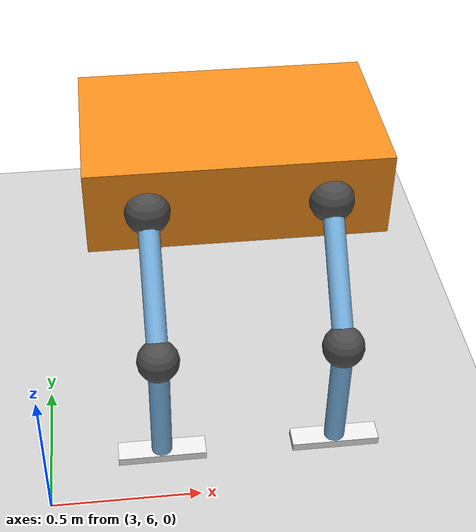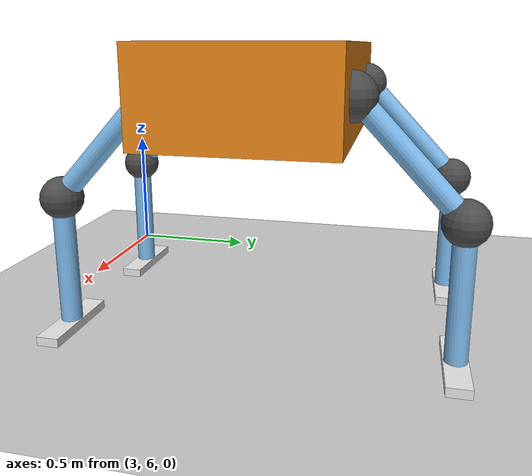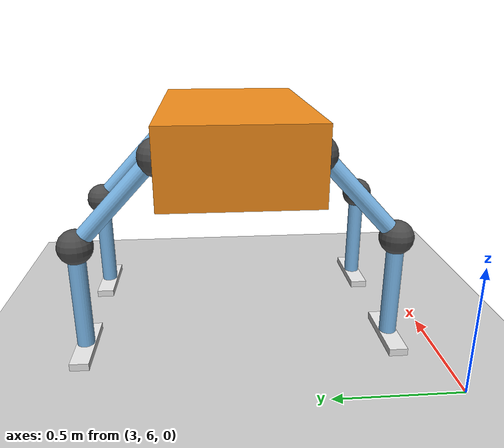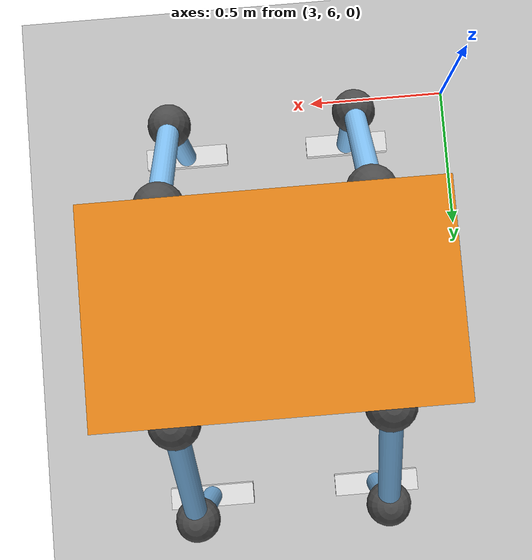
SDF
<sdf version="1.6">
 <world name="default">
  <model name="ground_plane">
   <static>1</static>
   <link name="link">
    <collision name="collision">
     <geometry><plane><normal>0 0 1</normal><size>100 100</size></plane></geometry>
     <surface>
      <contact><collide_bitmask>65535</collide_bitmask></contact>
      <friction><ode><mu>100</mu><mu2>50</mu2></ode></friction>
     </surface>
    </collision>
    <visual name="visual">
     <cast_shadows>0</cast_shadows>
     <geometry><plane><normal>0 0 1</normal><size>100 100</size></plane></geometry>
     <material>
      <script><uri>file://media/materials/scripts/gazebo.material</uri><name>Gazebo/Grey</name></script>
     </material>
    </visual>
   </link>
  </model>
  <model name="leg_joints_clone">
   <link name="link_0">
    <pose>0 0 1.18344 0 -0 0</pose>
    <inertial>
     <mass>1</mass>
     <inertia>
      <ixx>0.166667</ixx>
      <ixy>0</ixy>
      <ixz>0</ixz>
      <iyy>0.166667</iyy>
      <iyz>0</iyz>
      <izz>0.166667</izz>
     </inertia>
    </inertial>
    <visual name="visual">
     <geometry><box><size>1 0.6 0.3</size></box></geometry>
     <material>
      <lighting>1</lighting>
      <script><uri>file://media/materials/scripts/gazebo.material</uri><name>Gazebo/Orange</name></script>
      <shader type="pixel"><normal_map>__default__</normal_map></shader>
      <ambient>1 0.5088 0.0468 1</ambient>
      <diffuse>1 0.5088 0.0468 1</diffuse>
      <specular>0.5 0.5 0.5 1</specular>
      <emissive>0 0 0 1</emissive>
     </material>
    </visual>
    <collision name="collision">
     <geometry><box><size>1 0.6 0.3</size></box></geometry>
     <surface>
      <friction>
       <ode><mu>1</mu><mu2>1</mu2><fdir1>0 0 0</fdir1><slip1>0</slip1><slip2>0</slip2></ode>
       <torsional>
        <coefficient>1</coefficient>
        <patch_radius>0</patch_radius>
        <surface_radius>0</surface_radius>
        <use_patch_radius>1</use_patch_radius>
        <ode><slip>0</slip></ode>
       </torsional>
      </friction>
      <bounce><restitution_coefficient>0</restitution_coefficient><threshold>1e+06</threshold></bounce>
      <contact>
       <collide_without_contact>0</collide_without_contact>
       <collide_without_contact_bitmask>1</collide_without_contact_bitmask>
       <collide_bitmask>1</collide_bitmask>
       <ode>
        <soft_cfm>0</soft_cfm>
        <soft_erp>0.2</soft_erp>
        <kp>1e+13</kp>
        <kd>1</kd>
        <max_vel>0.01</max_vel>
        <min_depth>0</min_depth>
       </ode>
       <bullet>
        <split_impulse>1</split_impulse>
        <split_impulse_penetration_threshold>-0.01</split_impulse_penetration_threshold>
        <soft_cfm>0</soft_cfm>
        <soft_erp>0.2</soft_erp>
        <kp>1e+13</kp>
        <kd>1</kd>
       </bullet>
      </contact>
     </surface>
    </collision>
   </link>
   <link name="link_1">
    <pose>-0.3 -0.3 1.18344 0 -0 0</pose>
    <inertial>
     <mass>1</mass>
     <inertia><ixx>0.1</ixx><ixy>0</ixy><ixz>0</ixz><iyy>0.1</iyy><iyz>0</iyz><izz>0.1</izz></inertia>
    </inertial>
    <visual name="visual">
     <geometry><sphere><radius>0.075</radius></sphere></geometry>
     <material>
      <lighting>1</lighting>
      <script><uri>file://media/materials/scripts/gazebo.material</uri><name>Gazebo/DarkGrey</name></script>
      <shader type="pixel"><normal_map>__default__</normal_map></shader>
      <ambient>0.175 0.175 0.175 1</ambient>
      <diffuse>0.175 0.175 0.175 1</diffuse>
      <specular>0.175 0.175 0.175 1</specular>
      <emissive>0 0 0 1</emissive>
     </material>
    </visual>
    <collision name="collision">
     <geometry><sphere><radius>0.075</radius></sphere></geometry>
     <surface>
      <friction>
       <ode><mu>1</mu><mu2>1</mu2><fdir1>0 0 0</fdir1><slip1>0</slip1><slip2>0</slip2></ode>
       <torsional>
        <coefficient>1</coefficient>
        <patch_radius>0</patch_radius>
        <surface_radius>0</surface_radius>
        <use_patch_radius>1</use_patch_radius>
        <ode><slip>0</slip></ode>
       </torsional>
      </friction>
      <bounce><restitution_coefficient>0</restitution_coefficient><threshold>1e+06</threshold></bounce>
      <contact>
       <collide_without_contact>0</collide_without_contact>
       <collide_without_contact_bitmask>1</collide_without_contact_bitmask>
       <collide_bitmask>1</collide_bitmask>
       <ode>
        <soft_cfm>0</soft_cfm>
        <soft_erp>0.2</soft_erp>
        <kp>1e+13</kp>
        <kd>1</kd>
        <max_vel>0.01</max_vel>
        <min_depth>0</min_depth>
       </ode>
       <bullet>
        <split_impulse>1</split_impulse>
        <split_impulse_penetration_threshold>-0.01</split_impulse_penetration_threshold>
        <soft_cfm>0</soft_cfm>
        <soft_erp>0.2</soft_erp>
        <kp>1e+13</kp>
        <kd>1</kd>
       </bullet>
      </contact>
     </surface>
    </collision>
   </link>
   <link name="link_1_clone">
    <pose>0.3 -0.3 1.18344 0 -0 0</pose>
    <inertial>
     <mass>1</mass>
     <inertia><ixx>0.1</ixx><ixy>0</ixy><ixz>0</ixz><iyy>0.1</iyy><iyz>0</iyz><izz>0.1</izz></inertia>
    </inertial>
    <visual name="visual">
     <geometry><sphere><radius>0.075</radius></sphere></geometry>
     <material>
      <lighting>1</lighting>
      <script><uri>file://media/materials/scripts/gazebo.material</uri><name>Gazebo/DarkGrey</name></script>
      <shader type="pixel"><normal_map>__default__</normal_map></shader>
      <ambient>0.175 0.175 0.175 1</ambient>
      <diffuse>0.175 0.175 0.175 1</diffuse>
      <specular>0.175 0.175 0.175 1</specular>
      <emissive>0 0 0 1</emissive>
     </material>
    </visual>
    <collision name="collision">
     <geometry><sphere><radius>0.075</radius></sphere></geometry>
     <surface>
      <friction>
       <ode><mu>1</mu><mu2>1</mu2><fdir1>0 0 0</fdir1><slip1>0</slip1><slip2>0</slip2></ode>
       <torsional>
        <coefficient>1</coefficient>
        <patch_radius>0</patch_radius>
        <surface_radius>0</surface_radius>
        <use_patch_radius>1</use_patch_radius>
        <ode><slip>0</slip></ode>
       </torsional>
      </friction>
      <bounce><restitution_coefficient>0</restitution_coefficient><threshold>1e+06</threshold></bounce>
      <contact>
       <collide_without_contact>0</collide_without_contact>
       <collide_without_contact_bitmask>1</collide_without_contact_bitmask>
       <collide_bitmask>1</collide_bitmask>
       <ode>
        <soft_cfm>0</soft_cfm>
        <soft_erp>0.2</soft_erp>
        <kp>1e+13</kp>
        <kd>1</kd>
        <max_vel>0.01</max_vel>
        <min_depth>0</min_depth>
       </ode>
       <bullet>
        <split_impulse>1</split_impulse>
        <split_impulse_penetration_threshold>-0.01</split_impulse_penetration_threshold>
        <soft_cfm>0</soft_cfm>
        <soft_erp>0.2</soft_erp>
        <kp>1e+13</kp>
        <kd>1</kd>
       </bullet>
      </contact>
     </surface>
    </collision>
   </link>
   <link name="link_1_clone_0">
    <pose>0.3 0.3 1.18344 0 -0 0</pose>
    <inertial>
     <mass>1</mass>
     <inertia><ixx>0.1</ixx><ixy>0</ixy><ixz>0</ixz><iyy>0.1</iyy><iyz>0</iyz><izz>0.1</izz></inertia>
    </inertial>
    <visual name="visual">
     <geometry><sphere><radius>0.075</radius></sphere></geometry>
     <material>
      <lighting>1</lighting>
      <script><uri>file://media/materials/scripts/gazebo.material</uri><name>Gazebo/DarkGrey</name></script>
      <shader type="pixel"><normal_map>__default__</normal_map></shader>
      <ambient>0.175 0.175 0.175 1</ambient>
      <diffuse>0.175 0.175 0.175 1</diffuse>
      <specular>0.175 0.175 0.175 1</specular>
      <emissive>0 0 0 1</emissive>
     </material>
    </visual>
    <collision name="collision">
     <geometry><sphere><radius>0.075</radius></sphere></geometry>
     <surface>
      <friction>
       <ode><mu>1</mu><mu2>1</mu2><fdir1>0 0 0</fdir1><slip1>0</slip1><slip2>0</slip2></ode>
       <torsional>
        <coefficient>1</coefficient>
        <patch_radius>0</patch_radius>
        <surface_radius>0</surface_radius>
        <use_patch_radius>1</use_patch_radius>
        <ode><slip>0</slip></ode>
       </torsional>
      </friction>
      <bounce><restitution_coefficient>0</restitution_coefficient><threshold>1e+06</threshold></bounce>
      <contact>
       <collide_without_contact>0</collide_without_contact>
       <collide_without_contact_bitmask>1</collide_without_contact_bitmask>
       <collide_bitmask>1</collide_bitmask>
       <ode>
        <soft_cfm>0</soft_cfm>
        <soft_erp>0.2</soft_erp>
        <kp>1e+13</kp>
        <kd>1</kd>
        <max_vel>0.01</max_vel>
        <min_depth>0</min_depth>
       </ode>
       <bullet>
        <split_impulse>1</split_impulse>
        <split_impulse_penetration_threshold>-0.01</split_impulse_penetration_threshold>
        <soft_cfm>0</soft_cfm>
        <soft_erp>0.2</soft_erp>
        <kp>1e+13</kp>
        <kd>1</kd>
       </bullet>
      </contact>
     </surface>
    </collision>
   </link>
   <link name="link_1_clone_1">
    <pose>-0.3 0.3 1.18344 0 -0 0</pose>
    <inertial>
     <mass>1</mass>
     <inertia><ixx>0.1</ixx><ixy>0</ixy><ixz>0</ixz><iyy>0.1</iyy><iyz>0</iyz><izz>0.1</izz></inertia>
    </inertial>
    <visual name="visual">
     <geometry><sphere><radius>0.075</radius></sphere></geometry>
     <material>
      <lighting>1</lighting>
      <script><uri>file://media/materials/scripts/gazebo.material</uri><name>Gazebo/DarkGrey</name></script>
      <shader type="pixel"><normal_map>__default__</normal_map></shader>
      <ambient>0.175 0.175 0.175 1</ambient>
      <diffuse>0.175 0.175 0.175 1</diffuse>
      <specular>0.175 0.175 0.175 1</specular>
      <emissive>0 0 0 1</emissive>
     </material>
    </visual>
    <collision name="collision">
     <geometry><sphere><radius>0.075</radius></sphere></geometry>
     <surface>
      <friction>
       <ode><mu>1</mu><mu2>1</mu2><fdir1>0 0 0</fdir1><slip1>0</slip1><slip2>0</slip2></ode>
       <torsional>
        <coefficient>1</coefficient>
        <patch_radius>0</patch_radius>
        <surface_radius>0</surface_radius>
        <use_patch_radius>1</use_patch_radius>
        <ode><slip>0</slip></ode>
       </torsional>
      </friction>
      <bounce><restitution_coefficient>0</restitution_coefficient><threshold>1e+06</threshold></bounce>
      <contact>
       <collide_without_contact>0</collide_without_contact>
       <collide_without_contact_bitmask>1</collide_without_contact_bitmask>
       <collide_bitmask>1</collide_bitmask>
       <ode>
        <soft_cfm>0</soft_cfm>
        <soft_erp>0.2</soft_erp>
        <kp>1e+13</kp>
        <kd>1</kd>
        <max_vel>0.01</max_vel>
        <min_depth>0</min_depth>
       </ode>
       <bullet>
        <split_impulse>1</split_impulse>
        <split_impulse_penetration_threshold>-0.01</split_impulse_penetration_threshold>
        <soft_cfm>0</soft_cfm>
        <soft_erp>0.2</soft_erp>
        <kp>1e+13</kp>
        <kd>1</kd>
       </bullet>
      </contact>
     </surface>
    </collision>
   </link>
   <link name="link_2">
    <pose>-0.3 -0.47 1.01344 -0.75 -0 0</pose>
    <inertial>
     <mass>1</mass>
     <inertia><ixx>0.145833</ixx><ixy>0</ixy><ixz>0</ixz><iyy>0.145833</iyy><iyz>0</iyz><izz>0.125</izz></inertia>
    </inertial>
    <visual name="visual">
     <geometry><cylinder><radius>0.035</radius><length>0.4</length></cylinder></geometry>
     <material>
      <lighting>1</lighting>
      <script><uri>file://media/materials/scripts/gazebo.material</uri><name>Gazebo/SkyBlue</name></script>
      <shader type="pixel"><normal_map>__default__</normal_map></shader>
      <ambient>0.13 0.44 0.7 1</ambient>
      <diffuse>0 0 1 1</diffuse>
      <specular>0.1 0.1 0.1 1</specular>
      <emissive>0 0 0 1</emissive>
     </material>
    </visual>
    <collision name="collision">
     <geometry><cylinder><radius>0.035</radius><length>0.4</length></cylinder></geometry>
     <surface>
      <friction>
       <ode><mu>1</mu><mu2>1</mu2><fdir1>0 0 0</fdir1><slip1>0</slip1><slip2>0</slip2></ode>
       <torsional>
        <coefficient>1</coefficient>
        <patch_radius>0</patch_radius>
        <surface_radius>0</surface_radius>
        <use_patch_radius>1</use_patch_radius>
        <ode><slip>0</slip></ode>
       </torsional>
      </friction>
      <bounce><restitution_coefficient>0</restitution_coefficient><threshold>1e+06</threshold></bounce>
      <contact>
       <collide_without_contact>0</collide_without_contact>
       <collide_without_contact_bitmask>1</collide_without_contact_bitmask>
       <collide_bitmask>1</collide_bitmask>
       <ode>
        <soft_cfm>0</soft_cfm>
        <soft_erp>0.2</soft_erp>
        <kp>1e+13</kp>
        <kd>1</kd>
        <max_vel>0.01</max_vel>
        <min_depth>0</min_depth>
       </ode>
       <bullet>
        <split_impulse>1</split_impulse>
        <split_impulse_penetration_threshold>-0.01</split_impulse_penetration_threshold>
        <soft_cfm>0</soft_cfm>
        <soft_erp>0.2</soft_erp>
        <kp>1e+13</kp>
        <kd>1</kd>
       </bullet>
      </contact>
     </surface>
    </collision>
   </link>
   <link name="link_2_clone">
    <pose>0.3 -0.47 1.01344 -0.75 -0 0</pose>
    <inertial>
     <mass>1</mass>
     <inertia><ixx>0.145833</ixx><ixy>0</ixy><ixz>0</ixz><iyy>0.145833</iyy><iyz>0</iyz><izz>0.125</izz></inertia>
    </inertial>
    <visual name="visual">
     <geometry><cylinder><radius>0.035</radius><length>0.4</length></cylinder></geometry>
     <material>
      <lighting>1</lighting>
      <script><uri>file://media/materials/scripts/gazebo.material</uri><name>Gazebo/SkyBlue</name></script>
      <shader type="pixel"><normal_map>__default__</normal_map></shader>
      <ambient>0.13 0.44 0.7 1</ambient>
      <diffuse>0 0 1 1</diffuse>
      <specular>0.1 0.1 0.1 1</specular>
      <emissive>0 0 0 1</emissive>
     </material>
    </visual>
    <collision name="collision">
     <geometry><cylinder><radius>0.035</radius><length>0.4</length></cylinder></geometry>
     <surface>
      <friction>
       <ode><mu>1</mu><mu2>1</mu2><fdir1>0 0 0</fdir1><slip1>0</slip1><slip2>0</slip2></ode>
       <torsional>
        <coefficient>1</coefficient>
        <patch_radius>0</patch_radius>
        <surface_radius>0</surface_radius>
        <use_patch_radius>1</use_patch_radius>
        <ode><slip>0</slip></ode>
       </torsional>
      </friction>
      <bounce><restitution_coefficient>0</restitution_coefficient><threshold>1e+06</threshold></bounce>
      <contact>
       <collide_without_contact>0</collide_without_contact>
       <collide_without_contact_bitmask>1</collide_without_contact_bitmask>
       <collide_bitmask>1</collide_bitmask>
       <ode>
        <soft_cfm>0</soft_cfm>
        <soft_erp>0.2</soft_erp>
        <kp>1e+13</kp>
        <kd>1</kd>
        <max_vel>0.01</max_vel>
        <min_depth>0</min_depth>
       </ode>
       <bullet>
        <split_impulse>1</split_impulse>
        <split_impulse_penetration_threshold>-0.01</split_impulse_penetration_threshold>
        <soft_cfm>0</soft_cfm>
        <soft_erp>0.2</soft_erp>
        <kp>1e+13</kp>
        <kd>1</kd>
       </bullet>
      </contact>
     </surface>
    </collision>
   </link>
   <link name="link_2_clone_0">
    <pose>-0.3 0.47 1.01344 0.75 -0 0</pose>
    <inertial>
     <mass>1</mass>
     <inertia><ixx>0.145833</ixx><ixy>0</ixy><ixz>0</ixz><iyy>0.145833</iyy><iyz>0</iyz><izz>0.125</izz></inertia>
    </inertial>
    <visual name="visual">
     <geometry><cylinder><radius>0.035</radius><length>0.4</length></cylinder></geometry>
     <material>
      <lighting>1</lighting>
      <script><uri>file://media/materials/scripts/gazebo.material</uri><name>Gazebo/SkyBlue</name></script>
      <shader type="pixel"><normal_map>__default__</normal_map></shader>
      <ambient>0.13 0.44 0.7 1</ambient>
      <diffuse>0 0 1 1</diffuse>
      <specular>0.1 0.1 0.1 1</specular>
      <emissive>0 0 0 1</emissive>
     </material>
    </visual>
    <collision name="collision">
     <geometry><cylinder><radius>0.035</radius><length>0.4</length></cylinder></geometry>
     <surface>
      <friction>
       <ode><mu>1</mu><mu2>1</mu2><fdir1>0 0 0</fdir1><slip1>0</slip1><slip2>0</slip2></ode>
       <torsional>
        <coefficient>1</coefficient>
        <patch_radius>0</patch_radius>
        <surface_radius>0</surface_radius>
        <use_patch_radius>1</use_patch_radius>
        <ode><slip>0</slip></ode>
       </torsional>
      </friction>
      <bounce><restitution_coefficient>0</restitution_coefficient><threshold>1e+06</threshold></bounce>
      <contact>
       <collide_without_contact>0</collide_without_contact>
       <collide_without_contact_bitmask>1</collide_without_contact_bitmask>
       <collide_bitmask>1</collide_bitmask>
       <ode>
        <soft_cfm>0</soft_cfm>
        <soft_erp>0.2</soft_erp>
        <kp>1e+13</kp>
        <kd>1</kd>
        <max_vel>0.01</max_vel>
        <min_depth>0</min_depth>
       </ode>
       <bullet>
        <split_impulse>1</split_impulse>
        <split_impulse_penetration_threshold>-0.01</split_impulse_penetration_threshold>
        <soft_cfm>0</soft_cfm>
        <soft_erp>0.2</soft_erp>
        <kp>1e+13</kp>
        <kd>1</kd>
       </bullet>
      </contact>
     </surface>
    </collision>
   </link>
   <link name="link_2_clone_1">
    <pose>0.3 0.47 1.01344 0.75 -0 0</pose>
    <inertial>
     <mass>1</mass>
     <inertia><ixx>0.145833</ixx><ixy>0</ixy><ixz>0</ixz><iyy>0.145833</iyy><iyz>0</iyz><izz>0.125</izz></inertia>
    </inertial>
    <visual name="visual">
     <geometry><cylinder><radius>0.035</radius><length>0.4</length></cylinder></geometry>
     <material>
      <lighting>1</lighting>
      <script><uri>file://media/materials/scripts/gazebo.material</uri><name>Gazebo/SkyBlue</name></script>
      <shader type="pixel"><normal_map>__default__</normal_map></shader>
      <ambient>0.13 0.44 0.7 1</ambient>
      <diffuse>0 0 1 1</diffuse>
      <specular>0.1 0.1 0.1 1</specular>
      <emissive>0 0 0 1</emissive>
     </material>
    </visual>
    <collision name="collision">
     <geometry><cylinder><radius>0.035</radius><length>0.4</length></cylinder></geometry>
     <surface>
      <friction>
       <ode><mu>1</mu><mu2>1</mu2><fdir1>0 0 0</fdir1><slip1>0</slip1><slip2>0</slip2></ode>
       <torsional>
        <coefficient>1</coefficient>
        <patch_radius>0</patch_radius>
        <surface_radius>0</surface_radius>
        <use_patch_radius>1</use_patch_radius>
        <ode><slip>0</slip></ode>
       </torsional>
      </friction>
      <bounce><restitution_coefficient>0</restitution_coefficient><threshold>1e+06</threshold></bounce>
      <contact>
       <collide_without_contact>0</collide_without_contact>
       <collide_without_contact_bitmask>1</collide_without_contact_bitmask>
       <collide_bitmask>1</collide_bitmask>
       <ode>
        <soft_cfm>0</soft_cfm>
        <soft_erp>0.2</soft_erp>
        <kp>1e+13</kp>
        <kd>1</kd>
        <max_vel>0.01</max_vel>
        <min_depth>0</min_depth>
       </ode>
       <bullet>
        <split_impulse>1</split_impulse>
        <split_impulse_penetration_threshold>-0.01</split_impulse_penetration_threshold>
        <soft_cfm>0</soft_cfm>
        <soft_erp>0.2</soft_erp>
        <kp>1e+13</kp>
        <kd>1</kd>
       </bullet>
      </contact>
     </surface>
    </collision>
   </link>
   <link name="link_3">
    <pose>-0.3 -0.63 0.837888 0 -0 0</pose>
    <inertial>
     <mass>1</mass>
     <inertia><ixx>0.1</ixx><ixy>0</ixy><ixz>0</ixz><iyy>0.1</iyy><iyz>0</iyz><izz>0.1</izz></inertia>
    </inertial>
    <visual name="visual">
     <geometry><sphere><radius>0.07</radius></sphere></geometry>
     <material>
      <lighting>1</lighting>
      <script><uri>file://media/materials/scripts/gazebo.material</uri><name>Gazebo/DarkGrey</name></script>
      <shader type="pixel"><normal_map>__default__</normal_map></shader>
      <ambient>0.175 0.175 0.175 1</ambient>
      <diffuse>0.175 0.175 0.175 1</diffuse>
      <specular>0.175 0.175 0.175 1</specular>
      <emissive>0 0 0 1</emissive>
     </material>
    </visual>
    <collision name="collision">
     <geometry><sphere><radius>0.07</radius></sphere></geometry>
     <surface>
      <friction>
       <ode><mu>1</mu><mu2>1</mu2><fdir1>0 0 0</fdir1><slip1>0</slip1><slip2>0</slip2></ode>
       <torsional>
        <coefficient>1</coefficient>
        <patch_radius>0</patch_radius>
        <surface_radius>0</surface_radius>
        <use_patch_radius>1</use_patch_radius>
        <ode><slip>0</slip></ode>
       </torsional>
      </friction>
      <bounce><restitution_coefficient>0</restitution_coefficient><threshold>1e+06</threshold></bounce>
      <contact>
       <collide_without_contact>0</collide_without_contact>
       <collide_without_contact_bitmask>1</collide_without_contact_bitmask>
       <collide_bitmask>1</collide_bitmask>
       <ode>
        <soft_cfm>0</soft_cfm>
        <soft_erp>0.2</soft_erp>
        <kp>1e+13</kp>
        <kd>1</kd>
        <max_vel>0.01</max_vel>
        <min_depth>0</min_depth>
       </ode>
       <bullet>
        <split_impulse>1</split_impulse>
        <split_impulse_penetration_threshold>-0.01</split_impulse_penetration_threshold>
        <soft_cfm>0</soft_cfm>
        <soft_erp>0.2</soft_erp>
        <kp>1e+13</kp>
        <kd>1</kd>
       </bullet>
      </contact>
     </surface>
    </collision>
   </link>
   <link name="link_3_clone">
    <pose>0.3 -0.63 0.837888 0 -0 0</pose>
    <inertial>
     <mass>1</mass>
     <inertia><ixx>0.1</ixx><ixy>0</ixy><ixz>0</ixz><iyy>0.1</iyy><iyz>0</iyz><izz>0.1</izz></inertia>
    </inertial>
    <visual name="visual">
     <geometry><sphere><radius>0.07</radius></sphere></geometry>
     <material>
      <lighting>1</lighting>
      <script><uri>file://media/materials/scripts/gazebo.material</uri><name>Gazebo/DarkGrey</name></script>
      <shader type="pixel"><normal_map>__default__</normal_map></shader>
      <ambient>0.175 0.175 0.175 1</ambient>
      <diffuse>0.175 0.175 0.175 1</diffuse>
      <specular>0.175 0.175 0.175 1</specular>
      <emissive>0 0 0 1</emissive>
     </material>
    </visual>
    <collision name="collision">
     <geometry><sphere><radius>0.07</radius></sphere></geometry>
     <surface>
      <friction>
       <ode><mu>1</mu><mu2>1</mu2><fdir1>0 0 0</fdir1><slip1>0</slip1><slip2>0</slip2></ode>
       <torsional>
        <coefficient>1</coefficient>
        <patch_radius>0</patch_radius>
        <surface_radius>0</surface_radius>
        <use_patch_radius>1</use_patch_radius>
        <ode><slip>0</slip></ode>
       </torsional>
      </friction>
      <bounce><restitution_coefficient>0</restitution_coefficient><threshold>1e+06</threshold></bounce>
      <contact>
       <collide_without_contact>0</collide_without_contact>
       <collide_without_contact_bitmask>1</collide_without_contact_bitmask>
       <collide_bitmask>1</collide_bitmask>
       <ode>
        <soft_cfm>0</soft_cfm>
        <soft_erp>0.2</soft_erp>
        <kp>1e+13</kp>
        <kd>1</kd>
        <max_vel>0.01</max_vel>
        <min_depth>0</min_depth>
       </ode>
       <bullet>
        <split_impulse>1</split_impulse>
        <split_impulse_penetration_threshold>-0.01</split_impulse_penetration_threshold>
        <soft_cfm>0</soft_cfm>
        <soft_erp>0.2</soft_erp>
        <kp>1e+13</kp>
        <kd>1</kd>
       </bullet>
      </contact>
     </surface>
    </collision>
   </link>
   <link name="link_3_clone_0">
    <pose>-0.3 0.63 0.837888 0 -0 0</pose>
    <inertial>
     <mass>1</mass>
     <inertia><ixx>0.1</ixx><ixy>0</ixy><ixz>0</ixz><iyy>0.1</iyy><iyz>0</iyz><izz>0.1</izz></inertia>
    </inertial>
    <visual name="visual">
     <geometry><sphere><radius>0.07</radius></sphere></geometry>
     <material>
      <lighting>1</lighting>
      <script><uri>file://media/materials/scripts/gazebo.material</uri><name>Gazebo/DarkGrey</name></script>
      <shader type="pixel"><normal_map>__default__</normal_map></shader>
      <ambient>0.175 0.175 0.175 1</ambient>
      <diffuse>0.175 0.175 0.175 1</diffuse>
      <specular>0.175 0.175 0.175 1</specular>
      <emissive>0 0 0 1</emissive>
     </material>
    </visual>
    <collision name="collision">
     <geometry><sphere><radius>0.07</radius></sphere></geometry>
     <surface>
      <friction>
       <ode><mu>1</mu><mu2>1</mu2><fdir1>0 0 0</fdir1><slip1>0</slip1><slip2>0</slip2></ode>
       <torsional>
        <coefficient>1</coefficient>
        <patch_radius>0</patch_radius>
        <surface_radius>0</surface_radius>
        <use_patch_radius>1</use_patch_radius>
        <ode><slip>0</slip></ode>
       </torsional>
      </friction>
      <bounce><restitution_coefficient>0</restitution_coefficient><threshold>1e+06</threshold></bounce>
      <contact>
       <collide_without_contact>0</collide_without_contact>
       <collide_without_contact_bitmask>1</collide_without_contact_bitmask>
       <collide_bitmask>1</collide_bitmask>
       <ode>
        <soft_cfm>0</soft_cfm>
        <soft_erp>0.2</soft_erp>
        <kp>1e+13</kp>
        <kd>1</kd>
        <max_vel>0.01</max_vel>
        <min_depth>0</min_depth>
       </ode>
       <bullet>
        <split_impulse>1</split_impulse>
        <split_impulse_penetration_threshold>-0.01</split_impulse_penetration_threshold>
        <soft_cfm>0</soft_cfm>
        <soft_erp>0.2</soft_erp>
        <kp>1e+13</kp>
        <kd>1</kd>
       </bullet>
      </contact>
     </surface>
    </collision>
   </link>
   <link name="link_3_clone_1">
    <pose>0.3 0.63 0.837888 0 -0 0</pose>
    <inertial>
     <mass>1</mass>
     <inertia><ixx>0.1</ixx><ixy>0</ixy><ixz>0</ixz><iyy>0.1</iyy><iyz>0</iyz><izz>0.1</izz></inertia>
    </inertial>
    <visual name="visual">
     <geometry><sphere><radius>0.07</radius></sphere></geometry>
     <material>
      <lighting>1</lighting>
      <script><uri>file://media/materials/scripts/gazebo.material</uri><name>Gazebo/DarkGrey</name></script>
      <shader type="pixel"><normal_map>__default__</normal_map></shader>
      <ambient>0.175 0.175 0.175 1</ambient>
      <diffuse>0.175 0.175 0.175 1</diffuse>
      <specular>0.175 0.175 0.175 1</specular>
      <emissive>0 0 0 1</emissive>
     </material>
    </visual>
    <collision name="collision">
     <geometry><sphere><radius>0.07</radius></sphere></geometry>
     <surface>
      <friction>
       <ode><mu>1</mu><mu2>1</mu2><fdir1>0 0 0</fdir1><slip1>0</slip1><slip2>0</slip2></ode>
       <torsional>
        <coefficient>1</coefficient>
        <patch_radius>0</patch_radius>
        <surface_radius>0</surface_radius>
        <use_patch_radius>1</use_patch_radius>
        <ode><slip>0</slip></ode>
       </torsional>
      </friction>
      <bounce><restitution_coefficient>0</restitution_coefficient><threshold>1e+06</threshold></bounce>
      <contact>
       <collide_without_contact>0</collide_without_contact>
       <collide_without_contact_bitmask>1</collide_without_contact_bitmask>
       <collide_bitmask>1</collide_bitmask>
       <ode>
        <soft_cfm>0</soft_cfm>
        <soft_erp>0.2</soft_erp>
        <kp>1e+13</kp>
        <kd>1</kd>
        <max_vel>0.01</max_vel>
        <min_depth>0</min_depth>
       </ode>
       <bullet>
        <split_impulse>1</split_impulse>
        <split_impulse_penetration_threshold>-0.01</split_impulse_penetration_threshold>
        <soft_cfm>0</soft_cfm>
        <soft_erp>0.2</soft_erp>
        <kp>1e+13</kp>
        <kd>1</kd>
       </bullet>
      </contact>
     </surface>
    </collision>
   </link>
   <link name="link_4">
    <pose>-0.3 -0.63 0.600367 0 -0 0</pose>
    <inertial>
     <mass>1</mass>
     <inertia><ixx>0.145833</ixx><ixy>0</ixy><ixz>0</ixz><iyy>0.145833</iyy><iyz>0</iyz><izz>0.125</izz></inertia>
    </inertial>
    <visual name="visual">
     <geometry><cylinder><radius>0.035</radius><length>0.4</length></cylinder></geometry>
     <material>
      <lighting>1</lighting>
      <script><uri>file://media/materials/scripts/gazebo.material</uri><name>Gazebo/SkyBlue</name></script>
      <shader type="pixel"><normal_map>__default__</normal_map></shader>
      <ambient>0.13 0.44 0.7 1</ambient>
      <diffuse>0 0 1 1</diffuse>
      <specular>0.1 0.1 0.1 1</specular>
      <emissive>0 0 0 1</emissive>
     </material>
    </visual>
    <collision name="collision">
     <geometry><cylinder><radius>0.035</radius><length>0.4</length></cylinder></geometry>
     <surface>
      <friction>
       <ode><mu>1</mu><mu2>1</mu2><fdir1>0 0 0</fdir1><slip1>0</slip1><slip2>0</slip2></ode>
       <torsional>
        <coefficient>1</coefficient>
        <patch_radius>0</patch_radius>
        <surface_radius>0</surface_radius>
        <use_patch_radius>1</use_patch_radius>
        <ode><slip>0</slip></ode>
       </torsional>
      </friction>
      <bounce><restitution_coefficient>0</restitution_coefficient><threshold>1e+06</threshold></bounce>
      <contact>
       <collide_without_contact>0</collide_without_contact>
       <collide_without_contact_bitmask>1</collide_without_contact_bitmask>
       <collide_bitmask>1</collide_bitmask>
       <ode>
        <soft_cfm>0</soft_cfm>
        <soft_erp>0.2</soft_erp>
        <kp>1e+13</kp>
        <kd>1</kd>
        <max_vel>0.01</max_vel>
        <min_depth>0</min_depth>
       </ode>
       <bullet>
        <split_impulse>1</split_impulse>
        <split_impulse_penetration_threshold>-0.01</split_impulse_penetration_threshold>
        <soft_cfm>0</soft_cfm>
        <soft_erp>0.2</soft_erp>
        <kp>1e+13</kp>
        <kd>1</kd>
       </bullet>
      </contact>
     </surface>
    </collision>
   </link>
   <link name="link_4_clone">
    <pose>0.3 -0.63 0.600367 0 -0 0</pose>
    <inertial>
     <mass>1</mass>
     <inertia><ixx>0.145833</ixx><ixy>0</ixy><ixz>0</ixz><iyy>0.145833</iyy><iyz>0</iyz><izz>0.125</izz></inertia>
    </inertial>
    <visual name="visual">
     <geometry><cylinder><radius>0.035</radius><length>0.4</length></cylinder></geometry>
     <material>
      <lighting>1</lighting>
      <script><uri>file://media/materials/scripts/gazebo.material</uri><name>Gazebo/SkyBlue</name></script>
      <shader type="pixel"><normal_map>__default__</normal_map></shader>
      <ambient>0.13 0.44 0.7 1</ambient>
      <diffuse>0 0 1 1</diffuse>
      <specular>0.1 0.1 0.1 1</specular>
      <emissive>0 0 0 1</emissive>
     </material>
    </visual>
    <collision name="collision">
     <geometry><cylinder><radius>0.035</radius><length>0.4</length></cylinder></geometry>
     <surface>
      <friction>
       <ode><mu>1</mu><mu2>1</mu2><fdir1>0 0 0</fdir1><slip1>0</slip1><slip2>0</slip2></ode>
       <torsional>
        <coefficient>1</coefficient>
        <patch_radius>0</patch_radius>
        <surface_radius>0</surface_radius>
        <use_patch_radius>1</use_patch_radius>
        <ode><slip>0</slip></ode>
       </torsional>
      </friction>
      <bounce><restitution_coefficient>0</restitution_coefficient><threshold>1e+06</threshold></bounce>
      <contact>
       <collide_without_contact>0</collide_without_contact>
       <collide_without_contact_bitmask>1</collide_without_contact_bitmask>
       <collide_bitmask>1</collide_bitmask>
       <ode>
        <soft_cfm>0</soft_cfm>
        <soft_erp>0.2</soft_erp>
        <kp>1e+13</kp>
        <kd>1</kd>
        <max_vel>0.01</max_vel>
        <min_depth>0</min_depth>
       </ode>
       <bullet>
        <split_impulse>1</split_impulse>
        <split_impulse_penetration_threshold>-0.01</split_impulse_penetration_threshold>
        <soft_cfm>0</soft_cfm>
        <soft_erp>0.2</soft_erp>
        <kp>1e+13</kp>
        <kd>1</kd>
       </bullet>
      </contact>
     </surface>
    </collision>
   </link>
   <link name="link_4_clone_0">
    <pose>-0.3 0.63 0.600367 0 -0 0</pose>
    <inertial>
     <mass>1</mass>
     <inertia><ixx>0.145833</ixx><ixy>0</ixy><ixz>0</ixz><iyy>0.145833</iyy><iyz>0</iyz><izz>0.125</izz></inertia>
    </inertial>
    <visual name="visual">
     <geometry><cylinder><radius>0.035</radius><length>0.4</length></cylinder></geometry>
     <material>
      <lighting>1</lighting>
      <script><uri>file://media/materials/scripts/gazebo.material</uri><name>Gazebo/SkyBlue</name></script>
      <shader type="pixel"><normal_map>__default__</normal_map></shader>
      <ambient>0.13 0.44 0.7 1</ambient>
      <diffuse>0 0 1 1</diffuse>
      <specular>0.1 0.1 0.1 1</specular>
      <emissive>0 0 0 1</emissive>
     </material>
    </visual>
    <collision name="collision">
     <geometry><cylinder><radius>0.035</radius><length>0.4</length></cylinder></geometry>
     <surface>
      <friction>
       <ode><mu>1</mu><mu2>1</mu2><fdir1>0 0 0</fdir1><slip1>0</slip1><slip2>0</slip2></ode>
       <torsional>
        <coefficient>1</coefficient>
        <patch_radius>0</patch_radius>
        <surface_radius>0</surface_radius>
        <use_patch_radius>1</use_patch_radius>
        <ode><slip>0</slip></ode>
       </torsional>
      </friction>
      <bounce><restitution_coefficient>0</restitution_coefficient><threshold>1e+06</threshold></bounce>
      <contact>
       <collide_without_contact>0</collide_without_contact>
       <collide_without_contact_bitmask>1</collide_without_contact_bitmask>
       <collide_bitmask>1</collide_bitmask>
       <ode>
        <soft_cfm>0</soft_cfm>
        <soft_erp>0.2</soft_erp>
        <kp>1e+13</kp>
        <kd>1</kd>
        <max_vel>0.01</max_vel>
        <min_depth>0</min_depth>
       </ode>
       <bullet>
        <split_impulse>1</split_impulse>
        <split_impulse_penetration_threshold>-0.01</split_impulse_penetration_threshold>
        <soft_cfm>0</soft_cfm>
        <soft_erp>0.2</soft_erp>
        <kp>1e+13</kp>
        <kd>1</kd>
       </bullet>
      </contact>
     </surface>
    </collision>
   </link>
   <link name="link_4_clone_1">
    <pose>0.3 0.63 0.600367 0 -0 0</pose>
    <inertial>
     <mass>1</mass>
     <inertia><ixx>0.145833</ixx><ixy>0</ixy><ixz>0</ixz><iyy>0.145833</iyy><iyz>0</iyz><izz>0.125</izz></inertia>
    </inertial>
    <visual name="visual">
     <geometry><cylinder><radius>0.035</radius><length>0.4</length></cylinder></geometry>
     <material>
      <lighting>1</lighting>
      <script><uri>file://media/materials/scripts/gazebo.material</uri><name>Gazebo/SkyBlue</name></script>
      <shader type="pixel"><normal_map>__default__</normal_map></shader>
      <ambient>0.13 0.44 0.7 1</ambient>
      <diffuse>0 0 1 1</diffuse>
      <specular>0.1 0.1 0.1 1</specular>
      <emissive>0 0 0 1</emissive>
     </material>
    </visual>
    <collision name="collision">
     <geometry><cylinder><radius>0.035</radius><length>0.4</length></cylinder></geometry>
     <surface>
      <friction>
       <ode><mu>1</mu><mu2>1</mu2><fdir1>0 0 0</fdir1><slip1>0</slip1><slip2>0</slip2></ode>
       <torsional>
        <coefficient>1</coefficient>
        <patch_radius>0</patch_radius>
        <surface_radius>0</surface_radius>
        <use_patch_radius>1</use_patch_radius>
        <ode><slip>0</slip></ode>
       </torsional>
      </friction>
      <bounce><restitution_coefficient>0</restitution_coefficient><threshold>1e+06</threshold></bounce>
      <contact>
       <collide_without_contact>0</collide_without_contact>
       <collide_without_contact_bitmask>1</collide_without_contact_bitmask>
       <collide_bitmask>1</collide_bitmask>
       <ode>
        <soft_cfm>0</soft_cfm>
        <soft_erp>0.2</soft_erp>
        <kp>1e+13</kp>
        <kd>1</kd>
        <max_vel>0.01</max_vel>
        <min_depth>0</min_depth>
       </ode>
       <bullet>
        <split_impulse>1</split_impulse>
        <split_impulse_penetration_threshold>-0.01</split_impulse_penetration_threshold>
        <soft_cfm>0</soft_cfm>
        <soft_erp>0.2</soft_erp>
        <kp>1e+13</kp>
        <kd>1</kd>
       </bullet>
      </contact>
     </surface>
    </collision>
   </link>
   <link name="link_5">
    <pose>-0.3 -0.63 0.39802 0 -0 0</pose>
    <inertial>
     <mass>0.00039103</mass>
     <inertia>
      <ixx>1.3e-07</ixx>
      <ixy>0</ixy>
      <ixz>0</ixz>
      <iyy>2.46e-06</iyy>
      <iyz>0</iyz>
      <izz>2.55e-06</izz>
     </inertia>
    </inertial>
    <visual name="visual">
     <geometry><box><size>0.3 0.075 0.03</size></box></geometry>
     <material>
      <lighting>1</lighting>
      <script><uri>file://media/materials/scripts/gazebo.material</uri><name>Gazebo/White</name></script>
      <shader type="pixel"><normal_map>__default__</normal_map></shader>
      <ambient>0.3 0.3 0.3 1</ambient>
      <diffuse>0.7 0.7 0.7 1</diffuse>
      <specular>0.01 0.01 0.01 1</specular>
      <emissive>0 0 0 1</emissive>
     </material>
    </visual>
    <collision name="collision">
     <geometry><box><size>0.3 0.075 0.03</size></box></geometry>
     <surface>
      <friction>
       <ode><mu>1</mu><mu2>1</mu2><fdir1>0 0 0</fdir1><slip1>0</slip1><slip2>0</slip2></ode>
       <torsional>
        <coefficient>1</coefficient>
        <patch_radius>0</patch_radius>
        <surface_radius>0</surface_radius>
        <use_patch_radius>1</use_patch_radius>
        <ode><slip>0</slip></ode>
       </torsional>
      </friction>
      <bounce><restitution_coefficient>0</restitution_coefficient><threshold>1e+06</threshold></bounce>
      <contact>
       <collide_without_contact>0</collide_without_contact>
       <collide_without_contact_bitmask>1</collide_without_contact_bitmask>
       <collide_bitmask>1</collide_bitmask>
       <ode>
        <soft_cfm>0</soft_cfm>
        <soft_erp>0.2</soft_erp>
        <kp>1e+13</kp>
        <kd>1</kd>
        <max_vel>0.01</max_vel>
        <min_depth>0</min_depth>
       </ode>
       <bullet>
        <split_impulse>1</split_impulse>
        <split_impulse_penetration_threshold>-0.01</split_impulse_penetration_threshold>
        <soft_cfm>0</soft_cfm>
        <soft_erp>0.2</soft_erp>
        <kp>1e+13</kp>
        <kd>1</kd>
       </bullet>
      </contact>
     </surface>
    </collision>
   </link>
   <link name="link_5_clone">
    <pose>0.3 -0.63 0.39802 0 -0 0</pose>
    <inertial>
     <mass>0.00039103</mass>
     <inertia>
      <ixx>1.3e-07</ixx>
      <ixy>0</ixy>
      <ixz>0</ixz>
      <iyy>2.46e-06</iyy>
      <iyz>0</iyz>
      <izz>2.55e-06</izz>
     </inertia>
    </inertial>
    <visual name="visual">
     <geometry><box><size>0.3 0.075 0.03</size></box></geometry>
     <material>
      <lighting>1</lighting>
      <script><uri>file://media/materials/scripts/gazebo.material</uri><name>Gazebo/White</name></script>
      <shader type="pixel"><normal_map>__default__</normal_map></shader>
      <ambient>0.3 0.3 0.3 1</ambient>
      <diffuse>0.7 0.7 0.7 1</diffuse>
      <specular>0.01 0.01 0.01 1</specular>
      <emissive>0 0 0 1</emissive>
     </material>
    </visual>
    <collision name="collision">
     <geometry><box><size>0.3 0.075 0.03</size></box></geometry>
     <surface>
      <friction>
       <ode><mu>1</mu><mu2>1</mu2><fdir1>0 0 0</fdir1><slip1>0</slip1><slip2>0</slip2></ode>
       <torsional>
        <coefficient>1</coefficient>
        <patch_radius>0</patch_radius>
        <surface_radius>0</surface_radius>
        <use_patch_radius>1</use_patch_radius>
        <ode><slip>0</slip></ode>
       </torsional>
      </friction>
      <bounce><restitution_coefficient>0</restitution_coefficient><threshold>1e+06</threshold></bounce>
      <contact>
       <collide_without_contact>0</collide_without_contact>
       <collide_without_contact_bitmask>1</collide_without_contact_bitmask>
       <collide_bitmask>1</collide_bitmask>
       <ode>
        <soft_cfm>0</soft_cfm>
        <soft_erp>0.2</soft_erp>
        <kp>1e+13</kp>
        <kd>1</kd>
        <max_vel>0.01</max_vel>
        <min_depth>0</min_depth>
       </ode>
       <bullet>
        <split_impulse>1</split_impulse>
        <split_impulse_penetration_threshold>-0.01</split_impulse_penetration_threshold>
        <soft_cfm>0</soft_cfm>
        <soft_erp>0.2</soft_erp>
        <kp>1e+13</kp>
        <kd>1</kd>
       </bullet>
      </contact>
     </surface>
    </collision>
   </link>
   <link name="link_5_clone_0">
    <pose>-0.3 0.63 0.39802 0 -0 0</pose>
    <inertial>
     <mass>0.00039103</mass>
     <inertia>
      <ixx>1.3e-07</ixx>
      <ixy>0</ixy>
      <ixz>0</ixz>
      <iyy>2.46e-06</iyy>
      <iyz>0</iyz>
      <izz>2.55e-06</izz>
     </inertia>
    </inertial>
    <visual name="visual">
     <geometry><box><size>0.3 0.075 0.03</size></box></geometry>
     <material>
      <lighting>1</lighting>
      <script><uri>file://media/materials/scripts/gazebo.material</uri><name>Gazebo/White</name></script>
      <shader type="pixel"><normal_map>__default__</normal_map></shader>
      <ambient>0.3 0.3 0.3 1</ambient>
      <diffuse>0.7 0.7 0.7 1</diffuse>
      <specular>0.01 0.01 0.01 1</specular>
      <emissive>0 0 0 1</emissive>
     </material>
    </visual>
    <collision name="collision">
     <geometry><box><size>0.3 0.075 0.03</size></box></geometry>
     <surface>
      <friction>
       <ode><mu>1</mu><mu2>1</mu2><fdir1>0 0 0</fdir1><slip1>0</slip1><slip2>0</slip2></ode>
       <torsional>
        <coefficient>1</coefficient>
        <patch_radius>0</patch_radius>
        <surface_radius>0</surface_radius>
        <use_patch_radius>1</use_patch_radius>
        <ode><slip>0</slip></ode>
       </torsional>
      </friction>
      <bounce><restitution_coefficient>0</restitution_coefficient><threshold>1e+06</threshold></bounce>
      <contact>
       <collide_without_contact>0</collide_without_contact>
       <collide_without_contact_bitmask>1</collide_without_contact_bitmask>
       <collide_bitmask>1</collide_bitmask>
       <ode>
        <soft_cfm>0</soft_cfm>
        <soft_erp>0.2</soft_erp>
        <kp>1e+13</kp>
        <kd>1</kd>
        <max_vel>0.01</max_vel>
        <min_depth>0</min_depth>
       </ode>
       <bullet>
        <split_impulse>1</split_impulse>
        <split_impulse_penetration_threshold>-0.01</split_impulse_penetration_threshold>
        <soft_cfm>0</soft_cfm>
        <soft_erp>0.2</soft_erp>
        <kp>1e+13</kp>
        <kd>1</kd>
       </bullet>
      </contact>
     </surface>
    </collision>
   </link>
   <link name="link_5_clone_1">
    <pose>0.3 0.63 0.39802 0 -0 0</pose>
    <inertial>
     <mass>0.00039103</mass>
     <inertia>
      <ixx>1.3e-07</ixx>
      <ixy>0</ixy>
      <ixz>0</ixz>
      <iyy>2.46e-06</iyy>
      <iyz>0</iyz>
      <izz>2.55e-06</izz>
     </inertia>
    </inertial>
    <visual name="visual">
     <geometry><box><size>0.3 0.075 0.03</size></box></geometry>
     <material>
      <lighting>1</lighting>
      <script><uri>file://media/materials/scripts/gazebo.material</uri><name>Gazebo/White</name></script>
      <shader type="pixel"><normal_map>__default__</normal_map></shader>
      <ambient>0.3 0.3 0.3 1</ambient>
      <diffuse>0.7 0.7 0.7 1</diffuse>
      <specular>0.01 0.01 0.01 1</specular>
      <emissive>0 0 0 1</emissive>
     </material>
    </visual>
    <collision name="collision">
     <geometry><box><size>0.3 0.075 0.03</size></box></geometry>
     <surface>
      <friction>
       <ode><mu>1</mu><mu2>1</mu2><fdir1>0 0 0</fdir1><slip1>0</slip1><slip2>0</slip2></ode>
       <torsional>
        <coefficient>1</coefficient>
        <patch_radius>0</patch_radius>
        <surface_radius>0</surface_radius>
        <use_patch_radius>1</use_patch_radius>
        <ode><slip>0</slip></ode>
       </torsional>
      </friction>
      <bounce><restitution_coefficient>0</restitution_coefficient><threshold>1e+06</threshold></bounce>
      <contact>
       <collide_without_contact>0</collide_without_contact>
       <collide_without_contact_bitmask>1</collide_without_contact_bitmask>
       <collide_bitmask>1</collide_bitmask>
       <ode>
        <soft_cfm>0</soft_cfm>
        <soft_erp>0.2</soft_erp>
        <kp>1e+13</kp>
        <kd>1</kd>
        <max_vel>0.01</max_vel>
        <min_depth>0</min_depth>
       </ode>
       <bullet>
        <split_impulse>1</split_impulse>
        <split_impulse_penetration_threshold>-0.01</split_impulse_penetration_threshold>
        <soft_cfm>0</soft_cfm>
        <soft_erp>0.2</soft_erp>
        <kp>1e+13</kp>
        <kd>1</kd>
       </bullet>
      </contact>
     </surface>
    </collision>
   </link>
   <joint name="link_0_JOINT_0" type="fixed">
    <parent>link_0</parent>
    <child>link_1</child>
    <physics>
     <ode><limit><cfm>0</cfm><erp>0.2</erp></limit><suspension><cfm>0</cfm><erp>0.2</erp></suspension></ode>
    </physics>
   </joint>
   <joint name="link_0_JOINT_1" type="fixed">
    <parent>link_0</parent>
    <child>link_1_clone</child>
    <physics>
     <ode><limit><cfm>0</cfm><erp>0.2</erp></limit><suspension><cfm>0</cfm><erp>0.2</erp></suspension></ode>
    </physics>
   </joint>
   <joint name="link_0_JOINT_2" type="fixed">
    <parent>link_0</parent>
    <child>link_1_clone_1</child>
    <physics>
     <ode><limit><cfm>0</cfm><erp>0.2</erp></limit><suspension><cfm>0</cfm><erp>0.2</erp></suspension></ode>
    </physics>
   </joint>
   <joint name="link_0_JOINT_3" type="fixed">
    <parent>link_0</parent>
    <child>link_1_clone_0</child>
    <physics>
     <ode><limit><cfm>0</cfm><erp>0.2</erp></limit><suspension><cfm>0</cfm><erp>0.2</erp></suspension></ode>
    </physics>
   </joint>
   <joint name="link_2_JOINT_4" type="revolute">
    <parent>link_2</parent>
    <child>link_3</child>
    <axis>
     <xyz>1 0 0</xyz>
     <use_parent_model_frame>0</use_parent_model_frame>
     <limit>
      <lower>-1.79769e+308</lower>
      <upper>1.79769e+308</upper>
      <effort>-1</effort>
      <velocity>-1</velocity>
     </limit>
     <dynamics>
      <spring_reference>0</spring_reference>
      <spring_stiffness>0</spring_stiffness>
      <damping>0</damping>
      <friction>0</friction>
     </dynamics>
    </axis>
    <physics>
     <ode><limit><cfm>0</cfm><erp>0.2</erp></limit><suspension><cfm>0</cfm><erp>0.2</erp></suspension></ode>
    </physics>
   </joint>
   <joint name="link_2_clone_0_JOINT_5" type="revolute">
    <parent>link_2_clone</parent>
    <child>link_3_clone</child>
    <axis>
     <xyz>1 0 0</xyz>
     <use_parent_model_frame>0</use_parent_model_frame>
     <limit>
      <lower>-1.79769e+308</lower>
      <upper>1.79769e+308</upper>
      <effort>-1</effort>
      <velocity>-1</velocity>
     </limit>
     <dynamics>
      <spring_reference>0</spring_reference>
      <spring_stiffness>0</spring_stiffness>
      <damping>0</damping>
      <friction>0</friction>
     </dynamics>
    </axis>
    <physics>
     <ode><limit><cfm>0</cfm><erp>0.2</erp></limit><suspension><cfm>0</cfm><erp>0.2</erp></suspension></ode>
    </physics>
   </joint>
   <joint name="link_2_clone_0_JOINT_6" type="revolute">
    <parent>link_2_clone_0</parent>
    <child>link_3_clone_0</child>
    <axis>
     <xyz>1 0 0</xyz>
     <use_parent_model_frame>0</use_parent_model_frame>
     <limit>
      <lower>-1.79769e+308</lower>
      <upper>1.79769e+308</upper>
      <effort>-1</effort>
      <velocity>-1</velocity>
     </limit>
     <dynamics>
      <spring_reference>0</spring_reference>
      <spring_stiffness>0</spring_stiffness>
      <damping>0</damping>
      <friction>0</friction>
     </dynamics>
    </axis>
    <physics>
     <ode><limit><cfm>0</cfm><erp>0.2</erp></limit><suspension><cfm>0</cfm><erp>0.2</erp></suspension></ode>
    </physics>
   </joint>
   <joint name="link_2_clone_1_JOINT_7" type="revolute">
    <parent>link_2_clone_1</parent>
    <child>link_3_clone_1</child>
    <axis>
     <xyz>1 0 0</xyz>
     <use_parent_model_frame>0</use_parent_model_frame>
     <limit>
      <lower>-1.79769e+308</lower>
      <upper>1.79769e+308</upper>
      <effort>-1</effort>
      <velocity>-1</velocity>
     </limit>
     <dynamics>
      <spring_reference>0</spring_reference>
      <spring_stiffness>0</spring_stiffness>
      <damping>0</damping>
      <friction>0</friction>
     </dynamics>
    </axis>
    <physics>
     <ode><limit><cfm>0</cfm><erp>0.2</erp></limit><suspension><cfm>0</cfm><erp>0.2</erp></suspension></ode>
    </physics>
   </joint>
   <joint name="link_4_JOINT_10" type="revolute">
    <parent>link_4</parent>
    <child>link_3</child>
    <axis>
     <xyz>1 0 0</xyz>
     <use_parent_model_frame>0</use_parent_model_frame>
     <limit>
      <lower>-1.79769e+308</lower>
      <upper>1.79769e+308</upper>
      <effort>-1</effort>
      <velocity>-1</velocity>
     </limit>
     <dynamics>
      <spring_reference>0</spring_reference>
      <spring_stiffness>0</spring_stiffness>
      <damping>0</damping>
      <friction>0</friction>
     </dynamics>
    </axis>
    <physics>
     <ode><limit><cfm>0</cfm><erp>0.2</erp></limit><suspension><cfm>0</cfm><erp>0.2</erp></suspension></ode>
    </physics>
   </joint>
   <joint name="link_4_JOINT_14" type="fixed">
    <parent>link_4</parent>
    <child>link_5</child>
    <physics>
     <ode><limit><cfm>0</cfm><erp>0.2</erp></limit><suspension><cfm>0</cfm><erp>0.2</erp></suspension></ode>
    </physics>
   </joint>
   <joint name="link_4_clone_0_JOINT_13" type="revolute">
    <parent>link_4_clone_0</parent>
    <child>link_3_clone_0</child>
    <axis>
     <xyz>1 0 0</xyz>
     <use_parent_model_frame>0</use_parent_model_frame>
     <limit>
      <lower>-1.79769e+308</lower>
      <upper>1.79769e+308</upper>
      <effort>-1</effort>
      <velocity>-1</velocity>
     </limit>
     <dynamics>
      <spring_reference>0</spring_reference>
      <spring_stiffness>0</spring_stiffness>
      <damping>0</damping>
      <friction>0</friction>
     </dynamics>
    </axis>
    <physics>
     <ode><limit><cfm>0</cfm><erp>0.2</erp></limit><suspension><cfm>0</cfm><erp>0.2</erp></suspension></ode>
    </physics>
   </joint>
   <joint name="link_4_clone_0_JOINT_16" type="fixed">
    <parent>link_4_clone_0</parent>
    <child>link_5_clone_0</child>
    <physics>
     <ode><limit><cfm>0</cfm><erp>0.2</erp></limit><suspension><cfm>0</cfm><erp>0.2</erp></suspension></ode>
    </physics>
   </joint>
   <joint name="link_4_clone_1_JOINT_12" type="revolute">
    <parent>link_4_clone_1</parent>
    <child>link_3_clone_1</child>
    <axis>
     <xyz>1 0 0</xyz>
     <use_parent_model_frame>0</use_parent_model_frame>
     <limit>
      <lower>-1.79769e+308</lower>
      <upper>1.79769e+308</upper>
      <effort>-1</effort>
      <velocity>-1</velocity>
     </limit>
     <dynamics>
      <spring_reference>0</spring_reference>
      <spring_stiffness>0</spring_stiffness>
      <damping>0</damping>
      <friction>0</friction>
     </dynamics>
    </axis>
    <physics>
     <ode><limit><cfm>0</cfm><erp>0.2</erp></limit><suspension><cfm>0</cfm><erp>0.2</erp></suspension></ode>
    </physics>
   </joint>
   <joint name="link_4_clone_1_JOINT_17" type="fixed">
    <parent>link_4_clone_1</parent>
    <child>link_5_clone_1</child>
    <physics>
     <ode><limit><cfm>0</cfm><erp>0.2</erp></limit><suspension><cfm>0</cfm><erp>0.2</erp></suspension></ode>
    </physics>
   </joint>
   <joint name="link_4_clone_JOINT_11" type="revolute">
    <parent>link_4_clone</parent>
    <child>link_3_clone</child>
    <axis>
     <xyz>1 0 0</xyz>
     <use_parent_model_frame>0</use_parent_model_frame>
     <limit>
      <lower>-1.79769e+308</lower>
      <upper>1.79769e+308</upper>
      <effort>-1</effort>
      <velocity>-1</velocity>
     </limit>
     <dynamics>
      <spring_reference>0</spring_reference>
      <spring_stiffness>0</spring_stiffness>
      <damping>0</damping>
      <friction>0</friction>
     </dynamics>
    </axis>
    <physics>
     <ode><limit><cfm>0</cfm><erp>0.2</erp></limit><suspension><cfm>0</cfm><erp>0.2</erp></suspension></ode>
    </physics>
   </joint>
   <joint name="link_4_clone_JOINT_15" type="fixed">
    <parent>link_4_clone</parent>
    <child>link_5_clone</child>
    <physics>
     <ode><limit><cfm>0</cfm><erp>0.2</erp></limit><suspension><cfm>0</cfm><erp>0.2</erp></suspension></ode>
    </physics>
   </joint>
   <static>1</static>
   <pose>3.68081 6.80485 -0.374384 0 -0 7.2e-05</pose>
  </model>
 </world>
</sdf>
